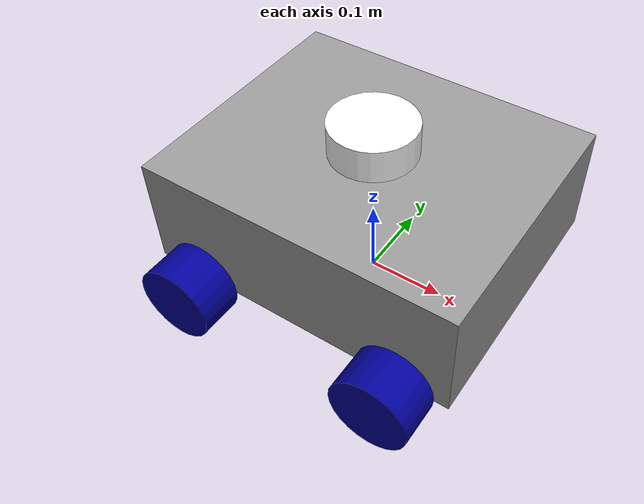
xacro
<?xml version="1.0"?>
<robot name="esteira" xmlns:xacro="http://www.ros.org/wiki/xacro">

    <xacro:property name="esteira_base_length" value="0.41"/>
    <xacro:property name="esteira_base_width" value="0.335"/>
    <xacro:property name="esteira_base_height" value="0.145"/>
    <xacro:property name="wheel_radius" value="0.050"/>
    <xacro:property name="wheel_length" value="0.056"/>
    <xacro:property name="laser_radius" value="0.055"/>
    <xacro:property name="laser_length" value="0.043"/>

    <material name="grey">
        <color rgba="0.6 0.6 0.6 1"/>
    </material>

    <material name="white">
        <color rgba="1 1 1 1"/>
    </material>

    <material name="blue">
        <color rgba="0 0 0.6 1"/>
    </material>

    <xacro:macro name="wheel_link" params="prefix">
        <link name="${prefix}_wheel_link">
            <visual>
                <geometry>
                    <cylinder radius="${wheel_radius}" length="${wheel_length}"/>
                </geometry>
                <origin xyz="0 0 0" rpy="${pi/2.0} 0 0"/>
                <material name="blue"/>
            </visual>
        </link>
    </xacro:macro>

    <link name="base_footprint"/>

    <link name="base_link">
            <visual>
                <geometry>
                    <box size="${esteira_base_length} ${esteira_base_width} ${esteira_base_height}"/>
                </geometry>
                <material name="grey"/>
                <origin xyz="0 0 ${esteira_base_height/2.0}" rpy="0 0 0"/>
            </visual>
    </link>

    <xacro:wheel_link prefix="rear_left"/>
    <xacro:wheel_link prefix="rear_right"/>
    <xacro:wheel_link prefix="front_left"/>
    <xacro:wheel_link prefix="front_right"/>

    <link name="laser">
        <visual>
            <geometry>
                    <cylinder radius="${laser_radius}" length="${laser_length}"/>
            </geometry>
            <origin xyz="0 0 0" rpy="0 0 0"/>
            <material name="white"/>
            </visual>
    </link>

    -------------------------------------------------------

    <joint name="base_joint" type="fixed">
        <parent link="base_footprint"/>
        <child link="base_link"/>
        <origin xyz="0 0 ${wheel_radius}" rpy="0 0 0"/>
    </joint>

    <joint name="base_rear_left_wheel" type="fixed">
        <parent link="base_link"/>
        <child link="rear_left_wheel_link"/>
        <origin xyz="-0.137 ${(esteira_base_width/2.0) + (wheel_length/2.0)} 0" rpy="0 0 0"/>
    </joint>

    <joint name="base_rear_right_wheel" type="fixed">
        <parent link="base_link"/>
        <child link="rear_right_wheel_link"/>
        <origin xyz="-0.137 ${-((esteira_base_width/2.0) + (wheel_length/2.0))} 0" rpy="0 0 0"/>

    </joint>

    <joint name="base_front_left_wheel" type="fixed">
        <parent link="base_link"/>
        <child link="front_left_wheel_link"/>
        <origin xyz="0.137 ${(esteira_base_width/2.0) + (wheel_length/2.0)} 0" rpy="0 0 0"/>

    </joint>

    <joint name="base_front_right_wheel" type="fixed">
        <parent link="base_link"/>
        <child link="front_right_wheel_link"/>
        <origin xyz="0.137 ${-((esteira_base_width/2.0) + (wheel_length/2.0))} 0" rpy="0 0 0"/>

    </joint>

    <joint name="base_laser_joint" type="fixed">
        <parent link="base_link"/>
        <child link="laser"/>
        <origin xyz="0 0 ${esteira_base_height + (laser_length/2.0)}" rpy="0 0 0"/>
    </joint>

</robot>
